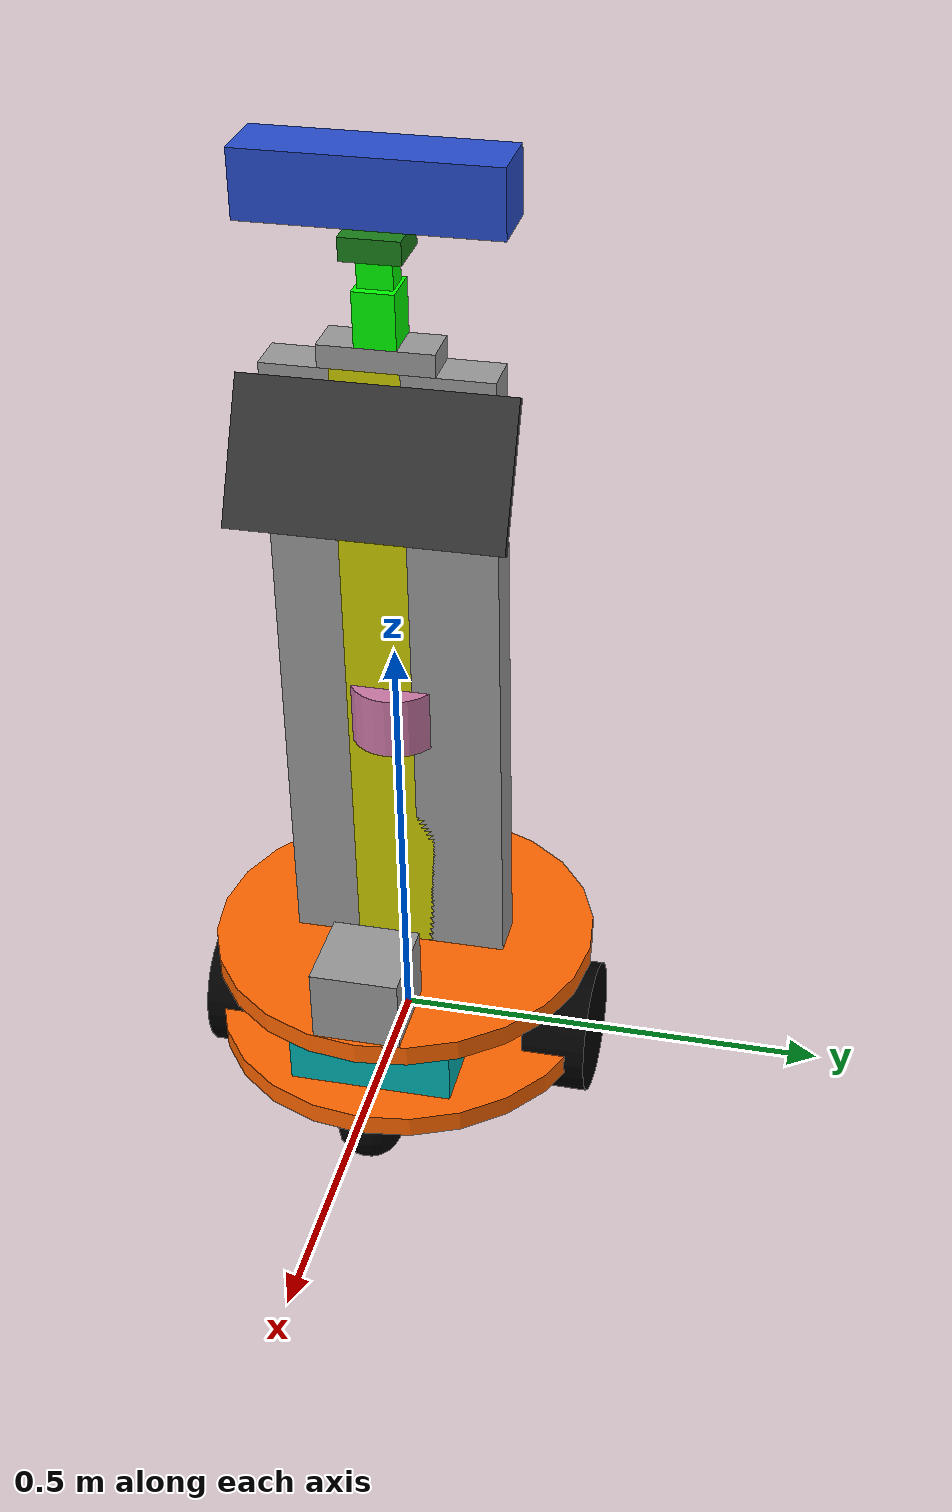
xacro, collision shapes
<?xml version="1.0" ?>

<robot name="mybot_xacro" xmlns:controller="http://playerstage.sourceforge.net/gazebo/xmlschema/#controller"
       xmlns:interface="http://playerstage.sourceforge.net/gazebo/xmlschema/#interface"
       xmlns:sensor="http://playerstage.sourceforge.net/gazebo/xmlschema/#sensor"
       xmlns:xacro="http://ros.org/wiki/xacro">

  <xacro:arg name="gpu" default="false"/>
  <xacro:property name="gpu" value="$(arg gpu)"/>

  <!-- KINECT ATTACHMENT -->
  <joint name="camera_rgb_joint" type="fixed">
    <origin rpy="0 0 0" xyz="0.028 -0.0125 0.075"/>
    <parent link="kinect_base_link"/>
    <child link="camera_rgb_frame"/>
  </joint>
  <link name="camera_rgb_frame">
    <inertial>
      <mass value="0.001"/>
      <origin xyz="0 0 0"/>
      <inertia ixx="0.0001" ixy="0.0" ixz="0.0" iyy="0.0001" iyz="0.0" izz="0.0001"/>
    </inertial>

  </link>
  <joint name="camera_rgb_optical_joint" type="fixed">
    <origin rpy="-1.57079632679 0 -1.57079632679" xyz="0 0 0"/>
    <parent link="camera_rgb_frame"/>
    <child link="camera_rgb_optical_frame"/>
  </joint>
  <link name="camera_rgb_optical_frame">
    <inertial>
      <mass value="0.001"/>
      <origin xyz="0 0 0"/>
      <inertia ixx="0.0001" ixy="0.0" ixz="0.0" iyy="0.0001" iyz="0.0" izz="0.0001"/>
    </inertial>
  </link>

  <joint name="camera_joint" type="fixed">
    <origin rpy="0 0 0" xyz="-0.031 0.0125 -0.016"/>
    <parent link="camera_rgb_frame"/>
    <child link="camera_link"/>
  </joint>

  <link name="camera_link">
    <visual>
      <!--origin xyz="0 0 0" rpy="0 0 ${M_PI/2}"/-->
      <origin rpy="0 0 0" xyz="0 0 0"/>
      <geometry>
        <mesh filename="package://diff_decription/meshes/kinect.dae"/>
      </geometry>
    </visual>
    <collision>
      <origin rpy="0 0 0" xyz="0.0 0.0 0.0"/>
      <geometry>
        <box size="0.07271 0.27794 0.073"/>
      </geometry>
    </collision>
    <inertial>
      <mass value="0.001"/>
      <origin xyz="0 0 0"/>
      <inertia ixx="0.0001" ixy="0.0" ixz="0.0" iyy="0.0001" iyz="0.0" izz="0.0001"/>
    </inertial>
  </link>

  <joint name="camera_depth_joint" type="fixed">
    <origin rpy="0 0 0" xyz="0 0.025 0"/>
    <parent link="camera_rgb_frame"/>
    <child link="camera_depth_frame"/>
  </joint>
  <link name="camera_depth_frame">
    <inertial>
      <mass value="0.001"/>
      <origin xyz="0 0 0"/>
      <inertia ixx="0.0001" ixy="0.0" ixz="0.0" iyy="0.0001" iyz="0.0" izz="0.0001"/>
    </inertial>
  </link>
  <joint name="camera_depth_optical_joint" type="fixed">
    <origin rpy="-1.57079632679 0 -1.57079632679" xyz="0 0 0"/>
    <parent link="camera_depth_frame"/>
    <child link="camera_depth_optical_frame"/>
  </joint>
  <link name="camera_depth_optical_frame">
    <inertial>
      <mass value="0.001"/>
      <origin xyz="0 0 0"/>
      <inertia ixx="0.0001" ixy="0.0" ixz="0.0" iyy="0.0001" iyz="0.0" izz="0.0001"/>
    </inertial>
  </link>

  <gazebo reference="camera_link">
    <material>Gazebo/Blue</material>
    <sensor name="camera" type="depth">
      <always_on>true</always_on>
      <update_rate>20.0</update_rate>
      <camera>
        <horizontal_fov>1.0471975512</horizontal_fov>
        <image>
          <format>R8G8B8</format>
          <width>640</width>
          <height>480</height>
        </image>
        <clip>
          <near>0.05</near>
          <far>8.0</far>
        </clip>
      </camera>
      <plugin filename="libgazebo_ros_openni_kinect.so" name="kinect_camera_controller">
        <cameraName>camera</cameraName>
        <alwaysOn>true</alwaysOn>
        <updateRate>10</updateRate>
        <imageTopicName>rgb/image_raw</imageTopicName>
        <depthImageTopicName>depth/image_raw</depthImageTopicName>
        <pointCloudTopicName>depth/points</pointCloudTopicName>
        <cameraInfoTopicName>rgb/camera_info</cameraInfoTopicName>
        <depthImageCameraInfoTopicName>depth/camera_info</depthImageCameraInfoTopicName>
        <frameName>camera_depth_optical_frame</frameName>
        <baseline>0.1</baseline>
        <distortion_k1>0.0</distortion_k1>
        <distortion_k2>0.0</distortion_k2>
        <distortion_k3>0.0</distortion_k3>
        <distortion_t1>0.0</distortion_t1>
        <distortion_t2>0.0</distortion_t2>
        <pointCloudCutoff>0.4</pointCloudCutoff>
      </plugin>
    </sensor>
  </gazebo>

  <!-- LASER ATTACHMENT -->
  <link name="laser">
    <collision>
      <origin rpy="0 0 0" xyz="0 0 0"/>
      <geometry>
        <box size="0.1 0.1 0.1"/>
      </geometry>
    </collision>
    <visual>
      <origin rpy="0 0 0" xyz="0 0 0"/>
      <geometry>
        <mesh filename="package://diff_decription/meshes/hokuyo.dae"/>
      </geometry>
    </visual>
    <inertial>
      <mass value="1e-5"/>
      <origin rpy="0 0 0" xyz="0 0 0"/>
      <inertia ixx="1e-6" ixy="0" ixz="0" iyy="1e-6" iyz="0" izz="1e-6"/>
    </inertial>
  </link>

  <joint name="laser_joint" type="fixed">
    <axis xyz="0 0 3.14"/>
    <origin rpy="0 0 0" xyz="0.168 0 0.06"/>
    <parent link="upper_base_link"/>
    <child link="laser"/>
  </joint>
  <!-- Import all Gazebo-customization elements, including Gazebo colors, sensors, controller -->
  <gazebo>
    <plugin filename="libgazebo_ros_control.so" name="gazebo_ros_control">
      <robotNamespace>/mybot_xacro</robotNamespace>
    </plugin>
  </gazebo>
  <gazebo reference="base_link">
    <material>Gazebo/Orange</material>
  </gazebo>

   <gazebo reference="upper_base_link">
    <material>Gazebo/Orange</material>
  </gazebo>
  <gazebo reference="wheel_1">
    <mu1 value="0.0"/>
    <mu2 value="0.0"/>
    <material>Gazebo/Black</material>
  </gazebo>
  <gazebo reference="wheel_2">
    <material>Gazebo/Black</material>
    <mu1>1000000.0</mu1>
    <mu2>1000000.0</mu2>
    <kp>1000000.0</kp>
    <kd>100</kd>
    <minDepth>0.001</minDepth>
    <maxVel>1.0</maxVel>
  </gazebo>
  <gazebo reference="wheel_3">
    <mu1 value="0.0"/>
    <mu2 value="0.0"/>
    <material>Gazebo/Black</material>
  </gazebo>
  <gazebo reference="wheel_4">
    <material>Gazebo/Black</material>
    <mu1>1000000.0</mu1>
    <mu2>1000000.0</mu2>
    <kp>1000000.0</kp>
    <kd>100.0</kd>
    <minDepth>0.001</minDepth>
    <maxVel>1.0</maxVel>
  </gazebo>

  <gazebo reference="laser">
      <material>Gazebo/Grey</material>
      <sensor type="gpu_ray" name="head_hokuyo_sensor">
          <pose>0 0 0 0 0 0</pose>
          <visualize>true</visualize>
          <update_rate>40</update_rate>
          <ray>
              <scan>
                  <horizontal>
                      <samples>720</samples>
                      <resolution>1</resolution>
                      <min_angle>-2.268928028</min_angle>
                      <max_angle>2.268928028</max_angle>
                  </horizontal>
              </scan>
              <range>
                  <min>0.1</min>
                  <max>12</max>
                  <resolution>0.01</resolution>
              </range>
              <noise>
                  <type>gaussian</type>
                  <mean>0.0</mean>
                  <stddev>0.01</stddev>
              </noise>
          </ray>
          <plugin name="gazebo_ros_head_hokuyo_controller" filename="libgazebo_ros_gpu_laser.so">
              <robotNamespace>/</robotNamespace>
              <topicName>/scan</topicName>
              <frameName>laser</frameName>
          </plugin>
      </sensor>
  </gazebo>

  <xacro:include filename="$(find velodyne_description)/urdf/VLP-16.urdf.xacro"/>
  <xacro:VLP-16 parent="upper_base_link" name="velodyne" topic="/velodyne_points" hz="20" samples="440" gpu="${gpu}">
    <origin xyz="0 0 0.3" rpy="0 0 0" />
  </xacro:VLP-16>

  <!-- WHEELS -->
  <gazebo>
    <plugin filename="libgazebo_ros_diff_drive.so" name="differential_drive_controller">
      <publishWheelTF>false</publishWheelTF>
      <publishWheelJointState>flase</publishWheelJointState>
      <alwaysOn>true</alwaysOn>
      <updateRate>100</updateRate>
      <leftJoint>base_to_wheel4</leftJoint>
      <rightJoint>base_to_wheel2</rightJoint>
      <wheelSeparation>0.390</wheelSeparation>
      <wheelDiameter>0.155</wheelDiameter>
      <wheelTorque>30</wheelTorque>
      <wheelAcceleration>0.25</wheelAcceleration>
      <commandTopic>cmd_vel</commandTopic>
      <odometryTopic>odom</odometryTopic>
      <odometryFrame>odom</odometryFrame>
      <robotBaseFrame>base_footprint</robotBaseFrame>
    </plugin>
  </gazebo>

  <!-- Add view camera - working -->
  <joint name="view_camera_joint" type="continuous">
    <origin rpy="0 1.570796 0" xyz="0 0 6"/>
    <parent link="kinect_base_link"/>
    <child link="view_camera_link"/>
    <!-- use the following line and type="continuous" to fix the angle of the view camera -->
    <axis xyz="1 0 0"/>
  </joint>
  <link name="view_camera_link">
    <inertial>
      <mass value="1e-5"/>
      <origin rpy="0 0 0" xyz="0 0 0"/>
      <inertia ixx="1e-6" ixy="0" ixz="0" iyy="1e-6" iyz="0" izz="1e-6"/>
    </inertial>
  </link>
  <gazebo reference="view_camera_link">
    <sensor name="view_camera" type="camera">
      <update_rate>30.0</update_rate>
      <camera name="head">
        <image>
          <width>640</width>
          <height>480</height>
          <format>R8G8B8</format>
        </image>
        <clip>
          <near>0.02</near>
          <far>300</far>
        </clip>
        <noise>
          <type>gaussian</type>
          <mean>0.0</mean>
          <stddev>0.007</stddev>
        </noise>
      </camera>
      <plugin filename="libgazebo_ros_camera.so" name="camera_controller">
        <alwaysOn>true</alwaysOn>
        <updateRate>25.0</updateRate>
        <cameraName>view_camera</cameraName>
        <imageTopicName>image_raw</imageTopicName>
        <cameraInfoTopicName>camera_info</cameraInfoTopicName>
        <frameName>view_camera_link</frameName>
        <CxPrime>320.5</CxPrime>
        <Cx>320.5</Cx>
        <Cy>240.5</Cy>
        <!-- image_width / (2*tan(hfov_radian /2)) -->
        <!-- 320 for wide and 772.55 for narrow stereo camera -->
        <focal_length>320</focal_length>
        <distortion_k1>0.0</distortion_k1>
        <distortion_k2>0.0</distortion_k2>
        <distortion_k3>0.0</distortion_k3>
        <distortion_t1>0.0</distortion_t1>
        <distortion_t2>0.0</distortion_t2>
      </plugin>
    </sensor>
    <material>Gazebo/Blue</material>
  </gazebo>
  <!--xacro:property name="height_torso" value="0.625" /-->
  <link name="base_footprint">
    <visual>
      <geometry>
        <box size="0.001 0.001 0.001"/>
      </geometry>
      <origin rpy="0 0 0" xyz="0 0 0"/>
      <!--origin rpy="0 0 -0.784900" xyz="0 0 0"/-->
    </visual>
    <inertial>
      <mass value="0.0001"/>
      <inertia ixx="1.0" ixy="0.0" ixz="0.0" iyy="1.0" iyz="0.0" izz="1.0"/>
    </inertial>
  </link>
  <gazebo reference="base_footprint">
    <material>Gazebo/Green</material>
    <turnGravityOff>false</turnGravityOff>
  </gazebo>
  <joint name="base_footprint_joint" type="fixed">
    <origin xyz="0 0 0"/>
    <parent link="base_footprint"/>
    <child link="base_link"/>
  </joint>
  <link name="base_link">
    <visual>
      <origin rpy="0 0 0" xyz="0 0 0"/>
      <geometry>
        <cylinder length="0.025" radius="0.225"/>
      </geometry>
      <material name="Orange">
        <color rgba="1.0 0.4 0.0 1.0"/>
      </material>
    </visual>
    <collision>
      <geometry>
        <cylinder length="0.025" radius="0.225"/>
      </geometry>
    </collision>
    <inertial>
      <mass value="10"/>
      <inertia ixx="0.571875" ixy="0" ixz="0" iyy="0.571875" iyz="0" izz="1.1390625"/>
    </inertial>
  </link>
  <!--front wheel -->
  <link name="wheel_1">
    <visual>
      <origin rpy="0 0 0" xyz="0 0 0"/>
      <geometry>
        <sphere radius="0.03875"/>
      </geometry>
      <material name="black">
        <color rgba="0 0 0 1"/>
      </material>
    </visual>
    <collision>
      <origin rpy="0 0 0" xyz="0 0 0"/>
      <geometry>
        <sphere radius="0.03875"/>
      </geometry>
    </collision>
    <inertial>
      <origin rpy="0 0 0" xyz="0 0 0"/>
      <mass value="2"/>
      <inertia ixx="0.00120125" ixy="0" ixz="0" iyy="0.00120125" iyz="0" izz="0.00120125"/>
    </inertial>
  </link>
  <!-- left wheel -->
  <link name="wheel_2">
    <visual>
      <geometry>
        <cylinder length="0.075" radius="0.0775"/>
      </geometry>
      <origin rpy="0 0 0" xyz="0 0 0"/>
      <material name="black"/>
    </visual>
    <collision>
      <origin rpy="0 0 0" xyz="0 0 0"/>
      <geometry>
        <cylinder length="0.075" radius="0.0775"/>
      </geometry>
    </collision>
    <inertial>
      <mass value="2"/>
      <inertia ixx="0.003940625" ixy="0" ixz="0" iyy="0.003940625" iyz="0" izz="0.00600625"/>
    </inertial>
  </link>
  <!-- back wheel -->
  <link name="wheel_3">
    <visual>
      <origin rpy="0 0 0" xyz="0 0 0"/>
      <geometry>
        <sphere radius="0.03875"/>
      </geometry>
      <material name="black">
        <color rgba="0 0 0 1"/>
      </material>
    </visual>
    <collision>
      <origin rpy="0 0 0" xyz="0 0 0"/>
      <geometry>
        <sphere radius="0.03875"/>
      </geometry>
    </collision>
    <inertial>
      <origin rpy="0 0 0" xyz="0 0 0"/>
      <mass value="2"/>
      <inertia ixx="0.00120125" ixy="0" ixz="0" iyy="0.00120125" iyz="0" izz="0.00120125"/>
    </inertial>
  </link>
  <!-- right wheel -->
  <link name="wheel_4">
    <visual>
      <geometry>
        <cylinder length="0.075" radius="0.0775"/>
      </geometry>
      <origin rpy="0 0 0" xyz="0 0 0"/>
      <material name="black"/>
    </visual>
    <collision>
      <origin rpy="0 0 0" xyz="0 0 0"/>
      <geometry>
        <cylinder length="0.075" radius="0.0775"/>
      </geometry>
    </collision>
    <inertial>
      <mass value="2"/>
      <inertia ixx="0.003940625" ixy="0" ixz="0" iyy="0.003940625" iyz="0" izz="0.00600625"/>
    </inertial>
  </link>
  <link name="cpu_link">
    <visual>
      <geometry>
        <box size="0.35 .19 0.095"/>
      </geometry>
      <origin rpy="0 0 0" xyz="0 0 0.0475"/>
      <material name="Cyan2">
        <color rgba="0 0.7 0.7 1.0"/>
      </material>
    </visual>
    <collision>
      <origin rpy="0 0 0" xyz="0 0 0.0475"/>
      <geometry>
        <box size="0.35 .19 0.095"/>
      </geometry>
    </collision>
    <inertial>
      <mass value="2"/>
      <inertia ixx="1.0" ixy="0.0" ixz="0.0" iyy="1.0" iyz="0.0" izz="1.0"/>
    </inertial>
  </link>
  <link name="upper_base_link">
    <visual>
      <origin rpy="0 0 0" xyz="0 0 0.0125"/>
      <geometry>
        <cylinder length="0.025" radius="0.225"/>
      </geometry>
      <material name="Orange">
        <color rgba="1.0 0.4 0.0 1.0"/>
      </material>
    </visual>
    <collision>
      <origin rpy="0 0 0" xyz="0 0 0.0125"/>
      <geometry>
        <cylinder length="0.025" radius="0.225"/>
      </geometry>
    </collision>
    <inertial>
      <mass value="1"/>
      <inertia ixx="1.0" ixy="0.0" ixz="0.0" iyy="1.0" iyz="0.0" izz="1.0"/>
    </inertial>
  </link>
  <link name="torso_link">
    <visual>
      <origin rpy="0 0 0" xyz="0 0 0.3625"/>
      <geometry>
        <box size="0.05 0.1 0.725"/>
      </geometry>
      <material name="Yellow2">
        <color rgba="0.8 0.8 0 1.0"/>
      </material>
    </visual>
    <collision>
      <origin rpy="0 0 0" xyz="0 0 0.3625"/>
      <geometry>
        <box size="0.05 0.1 0.725"/>
      </geometry>
    </collision>
    <inertial>
      <mass value="1"/>
      <inertia ixx="1.0" ixy="0.0" ixz="0.0" iyy="1.0" iyz="0.0" izz="1.0"/>
    </inertial>
  </link>
  <link name="right_torso_link">
    <visual>
      <origin rpy="0 0 0" xyz="0 0 0.3625"/>
      <geometry>
        <box size="0.05 0.025 0.725"/>
      </geometry>
      <material name="Grey2">
        <color rgba="0.6 0.6 0.6 1.0"/>
      </material>
    </visual>
    <collision>
      <origin rpy="0 0 0" xyz="0 0 0.3625"/>
      <geometry>
        <box size="0.05 0.1 0.725"/>
      </geometry>
    </collision>
    <inertial>
      <mass value="1"/>
      <inertia ixx="1.0" ixy="0.0" ixz="0.0" iyy="1.0" iyz="0.0" izz="1.0"/>
    </inertial>
  </link>
  <link name="left_torso_link">
    <visual>
      <origin rpy="0 0 0" xyz="0 0 0.3625"/>
      <geometry>
        <box size="0.05 0.025 0.725"/>
      </geometry>
      <material name="Grey2">
        <color rgba="0.6 0.6 0.6 1.0"/>
      </material>
    </visual>
    <collision>
      <origin rpy="0 0 0" xyz="0 0 0.3625"/>
      <geometry>
        <box size="0.05 0.1 0.725"/>
      </geometry>
    </collision>
    <inertial>
      <mass value="1"/>
      <inertia ixx="1.0" ixy="0.0" ixz="0.0" iyy="1.0" iyz="0.0" izz="1.0"/>
    </inertial>
  </link>
  <link name="top_torso_link">
    <visual>
      <origin rpy="0 0 0" xyz="0 0 0.0125"/>
      <geometry>
        <box size="0.05 0.175 0.025"/>
      </geometry>
      <material name="Grey2">
        <color rgba="0.6 0.6 0.6 1.0"/>
      </material>
    </visual>
    <collision>
      <origin rpy="0 0 0" xyz="0 0 0.0125"/>
      <geometry>
        <box size="0.05 0.125 0.025"/>
      </geometry>
    </collision>
    <inertial>
      <mass value="0.125"/>
      <inertia ixx="1.0" ixy="0.0" ixz="0.0" iyy="1.0" iyz="0.0" izz="1.0"/>
    </inertial>
  </link>
  <link name="head_pan_link">
    <visual>
      <origin rpy="0 0 0" xyz="0 0 0.03"/>
      <geometry>
        <box size="0.05 0.045 0.06"/>
      </geometry>
      <material name="Green1">
        <color rgba="0 1 0 1.0"/>
      </material>
    </visual>
    <collision>
      <origin rpy="0 0 0" xyz="0 0 0.03"/>
      <geometry>
        <box size="0.05 0.045 0.06"/>
      </geometry>
    </collision>
    <inertial>
      <mass value="0.125"/>
      <inertia ixx="1.0" ixy="0.0" ixz="0.0" iyy="1.0" iyz="0.0" izz="1.0"/>
    </inertial>
  </link>
  <link name="head_tilt_link">
    <visual>
      <origin rpy="0 0 0" xyz="0 0 0.0225"/>
      <geometry>
        <box size="0.03 0.038 0.045"/>
      </geometry>
      <material name="Green1">
        <color rgba="0 1 0 1.0"/>
      </material>
    </visual>
    <collision>
      <origin rpy="0 0 0" xyz="0 0 0.0225"/>
      <geometry>
        <box size="0.03 0.038 0.045"/>
      </geometry>
    </collision>
    <inertial>
      <mass value="0.125"/>
      <inertia ixx="1.0" ixy="0.0" ixz="0.0" iyy="1.0" iyz="0.0" izz="1.0"/>
    </inertial>
  </link>
  <link name="kinect_base_link">
    <visual>
      <origin rpy="0 0 0" xyz="0 0 0.0125"/>
      <geometry>
        <box size="0.06 0.065 0.025"/>
      </geometry>
      <material name="Green3">
        <color rgba="0.1 0.5 0.1 1.0"/>
      </material>
    </visual>
    <collision>
      <geometry>
        <box size="0.06 0.065 0.025"/>
      </geometry>
    </collision>
    <inertial>
      <mass value="0.125"/>
      <inertia ixx="1.0" ixy="0.0" ixz="0.0" iyy="1.0" iyz="0.0" izz="1.0"/>
    </inertial>
  </link>
  <link name="screen_link">
    <visual>
      <origin rpy="0 -0.5 0" xyz="0.06 0 -0.11"/>
      <geometry>
        <box size="0.01 0.3 0.16"/>
      </geometry>
      <material name="Grey3">
        <color rgba="0.2 0.2 0.2 1.0"/>
      </material>
    </visual>
    <collision>
      <origin rpy="0 -0.5 0" xyz="0.06 0 -0.11"/>
      <geometry>
        <box size="0.01 0.3 0.16"/>
      </geometry>
    </collision>
    <inertial>
      <mass value="0.125"/>
      <inertia ixx="1.0" ixy="0.0" ixz="0.0" iyy="1.0" iyz="0.0" izz="1.0"/>
    </inertial>
  </link>
  <joint name="base_to_wheel1" type="continuous">
    <parent link="base_link"/>
    <child link="wheel_1"/>

    <origin rpy="0 0 0" xyz="0.18 0 -0.03865234375"/>
    <axis xyz="0 0 1"/>
  </joint>
  <joint name="base_to_wheel2" type="continuous">
    <axis xyz="0 0 1"/>
    <anchor xyz="0 0 0"/>
    <limit effort="100" velocity="100"/>
    <parent link="base_link"/>
    <child link="wheel_2"/>
    <origin rpy="-1.5707 0 0" xyz="0 -0.195 0"/>
  </joint>
  <joint name="base_to_wheel3" type="continuous">
    <parent link="base_link"/>
    <axis xyz="0 0 1"/>
    <child link="wheel_3"/>
    <!--added length_base/32 to get the contact of the wheel with the floor -->
    <origin rpy="0 0 0" xyz="-0.18 0 -0.03865234375"/>
  </joint>
  <joint name="base_to_wheel4" type="continuous">
    <parent link="base_link"/>
    <axis xyz="0 0 1"/>
    <child link="wheel_4"/>
    <origin rpy="-1.5707 0 0" xyz="0 0.195 0"/>
  </joint>
  <joint name="cpu_base_joint" type="fixed">
    <origin xyz="0 0 0"/>
    <parent link="base_link"/>
    <child link="cpu_link"/>
  </joint>
  <joint name="upper_base_cpu_joint" type="fixed">
    <origin xyz="0 0 0.095"/>
    <parent link="cpu_link"/>
    <child link="upper_base_link"/>
  </joint>
  <joint name="torso_upper_base_joint" type="fixed">
    <origin xyz="0 0 0.025"/>
    <parent link="upper_base_link"/>
    <child link="torso_link"/>
  </joint>
  <joint name="right_torso_upper_base_joint" type="fixed">
    <origin xyz="0 -0.075 0.025"/>
    <parent link="upper_base_link"/>
    <child link="right_torso_link"/>
  </joint>
  <joint name="left_torso_upper_base_joint" type="fixed">
    <parent link="upper_base_link"/>
    <child link="left_torso_link"/>
    <origin xyz="0 0.075 0.025"/>
  </joint>
  <joint name="top_torso_torso_joint" type="fixed">
    <parent link="torso_link"/>
    <child link="top_torso_link"/>
    <origin xyz="0 0 0.725"/>
  </joint>
  <joint name="head_pan_servo" type="fixed">
    <parent link="top_torso_link"/>
    <child link="head_pan_link"/>
    <origin rpy="0 0 0" xyz="0 0 0.025"/>
  </joint>
  <joint name="head_pan_joint" type="fixed">
    <parent link="head_pan_link"/>
    <child link="head_tilt_link"/>
    <origin rpy="0 0 0" xyz="0 0 0.06"/>
  </joint>
  <joint name="kinect_base_joint" type="fixed">
    <parent link="head_tilt_link"/>
    <child link="kinect_base_link"/>
    <origin rpy="0 0 0" xyz="0 0 0.045"/>
  </joint>
  <joint name="screen_joint" type="fixed">
    <parent link="top_torso_link"/>
    <child link="screen_link"/>
    <origin rpy="0 0 0" xyz="0 0 0.025"/>
  </joint>
</robot>

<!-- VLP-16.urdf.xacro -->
<robot xmlns:xacro="http://www.ros.org/wiki/xacro" name="VLP-16">
  <xacro:property name="M_PI" value="3.1415926535897931" />
  <xacro:macro name="VLP-16" params="*origin parent:=upper_base_link name:=velodyne topic:=/velodyne_points hz:=20 lasers:=16 samples:=440 collision_range:=0.3 min_range:=0.9 max_range:=130.0 noise:=0.008 min_angle:=-${M_PI} max_angle:=${M_PI} gpu:=false">

    <joint name="${name}_base_mount_joint" type="fixed">
      <xacro:insert_block name="origin" />
      <axis xyz="0 0 3.14"/>
      <origin rpy="0 0 0" xyz="0.168 0 0.06"/>
      <parent link="${parent}"/>
      <child link="${name}_base_link"/>
    </joint>

    <link name="${name}_base_link">
      <inertial>
        <mass value="0.83"/>
        <origin xyz="0 0 0.03585"/>
        <inertia ixx="${(0.83 * (3.0*0.0516*0.0516 + 0.0717*0.0717)) / 12.0}" ixy="0" ixz="0"
          iyy="${(0.83 * (3.0*0.0516*0.0516 + 0.0717*0.0717)) / 12.0}" iyz="0"
          izz="${0.5 * 0.83 * (0.0516*0.0516)}"/>
      </inertial>
      <visual>
        <geometry>
          <mesh filename="package://velodyne_description/meshes/VLP16_base_1.dae" />
        </geometry>
      </visual>
      <visual>
        <geometry>
          <mesh filename="package://velodyne_description/meshes/VLP16_base_2.dae" />
        </geometry>
      </visual>
      <collision>
        <origin rpy="0 0 0" xyz="0 0 0.03585"/>
        <geometry>
          <cylinder radius="0.0516" length="0.0717"/>
        </geometry>
      </collision>
    </link>

    <joint name="${name}_base_scan_joint" type="fixed" >
      <origin xyz="0 0 0.0377" rpy="0 0 0" />
      <parent link="${name}_base_link" />
      <child link="${name}"/>
    </joint>

    <link name="${name}">
      <inertial>
        <mass value="0.01"/>
        <origin xyz="0 0 0"/>
        <inertia ixx="1e-7" ixy="0" ixz="0" iyy="1e-7" iyz="0" izz="1e-7"/>
      </inertial>
      <visual>
        <origin xyz="0 0 -0.0377" />
        <geometry>
          <mesh filename="package://velodyne_description/meshes/VLP16_scan.dae" />
        </geometry>
      </visual>
    </link>

    <!-- Gazebo requires the velodyne_gazebo_plugins package -->
    <gazebo reference="${name}">
      <xacro:if value="${gpu}">
        <sensor type="gpu_ray" name="${name}-VLP16">
          <pose>0 0 0 0 0 0</pose>
          <visualize>false</visualize>
          <update_rate>${hz}</update_rate>
          <ray>
            <scan>
              <horizontal>
                <samples>${samples}</samples>
                <resolution>1</resolution>
                <min_angle>${min_angle}</min_angle>
                <max_angle>${max_angle}</max_angle>
              </horizontal>
              <vertical>
                <samples>${lasers}</samples>
                <resolution>1</resolution>
                <min_angle>-${15.0*M_PI/180.0}</min_angle>
                <max_angle> ${15.0*M_PI/180.0}</max_angle>
              </vertical>
            </scan>
            <range>
              <min>${collision_range}</min>
              <max>${max_range+1}</max>
              <resolution>0.001</resolution>
            </range>
            <noise>
              <type>gaussian</type>
              <mean>0.0</mean>
              <stddev>0.0</stddev>
            </noise>
          </ray>
          <plugin name="gazebo_ros_laser_controller" filename="libgazebo_ros_velodyne_gpu_laser.so">
            <topicName>${topic}_gpu</topicName>
            <frameName>${name}</frameName>
            <min_range>${min_range}</min_range>
            <max_range>${max_range}</max_range>
            <gaussianNoise>${noise}</gaussianNoise>
          </plugin>
        </sensor>
      </xacro:if>
      <xacro:unless value="${gpu}">
        <sensor type="ray" name="${name}-VLP16">
          <pose>0 0 0 0 0 0</pose>
          <visualize>false</visualize>
          <update_rate>${hz}</update_rate>
          <ray>
            <scan>
              <horizontal>
                <samples>${samples}</samples>
                <resolution>1</resolution>
                <min_angle>${min_angle}</min_angle>
                <max_angle>${max_angle}</max_angle>
              </horizontal>
              <vertical>
                <samples>${lasers}</samples>
                <resolution>1</resolution>
                <min_angle>-${15.0*M_PI/180.0}</min_angle>
                <max_angle> ${15.0*M_PI/180.0}</max_angle>
              </vertical>
            </scan>
            <range>
              <min>${collision_range}</min>
              <max>${max_range+1}</max>
              <resolution>0.001</resolution>
            </range>
            <noise>
              <type>gaussian</type>
              <mean>0.0</mean>
              <stddev>0.0</stddev>
            </noise>
          </ray>
          <plugin name="gazebo_ros_laser_controller" filename="libgazebo_ros_velodyne_laser.so">
            <topicName>${topic}_cpu</topicName>
            <frameName>${name}</frameName>
            <min_range>${min_range}</min_range>
            <max_range>${max_range}</max_range>
            <gaussianNoise>${noise}</gaussianNoise>
          </plugin>
        </sensor>
      </xacro:unless>
    </gazebo>

  </xacro:macro>
</robot>
